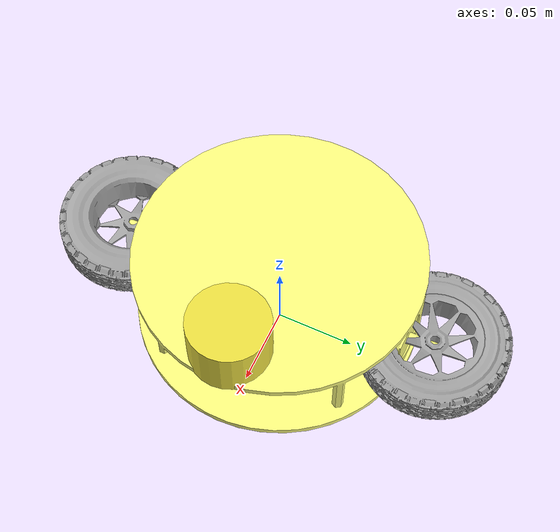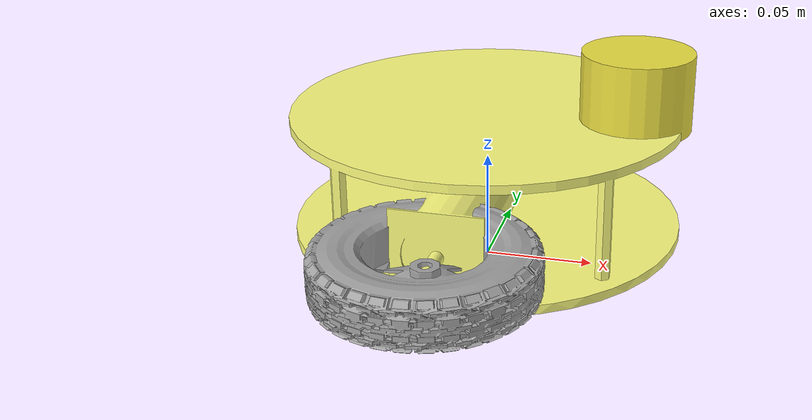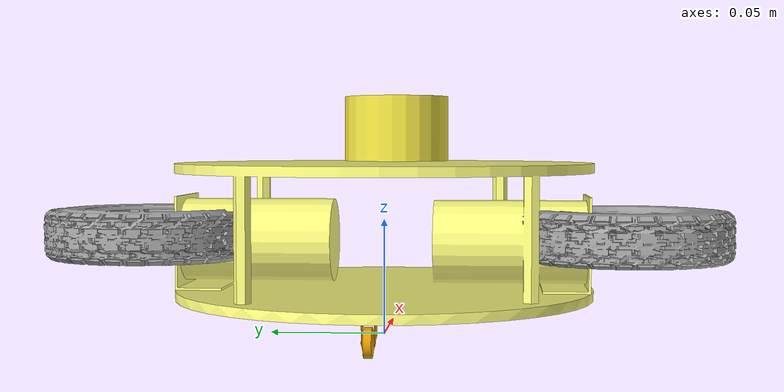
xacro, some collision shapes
<?xml version="1.0" ?>

  <!-- Chasis defined here -->
 <robot name="pocker_bot_vrep" xmlns:xacro="http://www.ros.org/wiki/xacro">
 <xacro:include filename="$(find pocker_bot_vrep_description)/urdf/materials.xacro" />
 <xacro:include filename="$(find pocker_bot_vrep_description)/urdf/wheel_macros.xacro" />
 <xacro:include filename="$(find pocker_bot_vrep_description)/urdf/sensor_macros.xacro" />

<!-- Namespaces of links -->
  <xacro:property name="base_name" value="base_link" />
  <xacro:property name="left_wheel" value="left_wheel_link" />
  <xacro:property name="right_wheel" value="right_wheel_link" />
  <xacro:property name="laser_sensor" value="laser_sensor" />

<!-- Configuration of the base of the robot-->
 <xacro:property name="bot_height" value="0.054024" />
 <xacro:property name="bot_base_radius" value="0.08987" />
<!-- Configuration of the caster -->
 <xacro:property name="caster_radius" value="0.0165" />
 <!-- Configuration of wheel -->
 <xacro:property name="wheel_radius" value="${(bot_height/2)+(caster_radius)}" />
 <xacro:property name="wheel_thickness" value="0.012" />
  <!-- Configuration of sensor -->
 <xacro:property name="sensor_thickness" value="0.035" />
 <xacro:property name="sensor_radius" value="0.025" />

 	<link name="${base_name}">
    <inertial>
      <mass value="5"/>
      <inertia ixx="0.0395416666667" ixy="0" ixz="0" iyy="0.106208333333" iyz="0" izz="0.106208333333"/>
    </inertial>
    <collision name="collision_chassis">
    	<origin rpy="0 0 0" xyz="0 0 ${(bot_height/2)+caster_radius}"/>
      <geometry>
        <cylinder length="${bot_height}" radius="${bot_base_radius}"/>
      </geometry>
    </collision>
    <visual>
      <origin rpy="1.57 0 1.57" xyz="0 0 ${caster_radius}"/>
      <geometry>
        <mesh filename="package://pocker_bot_vrep_description/urdf/meshes/bot_base.stl" scale="0.01 0.01 0.01"/>
      </geometry>
      <material name="light_yellow"/>
    </visual>

    <!-- caster front -->
    <collision name="caster_front_collision">
      <origin rpy=" 0 0 0" xyz="${(3/4)*bot_base_radius} 0 ${caster_radius}"/>
      <geometry>
        <sphere radius="${caster_radius}"/>
      </geometry>
      <surface>
        <friction>
          <ode>
            <mu>0</mu>
            <mu2>0</mu2>
            <slip1>1.0</slip1>
            <slip2>1.0</slip2>
          </ode>
        </friction>
      </surface>
    </collision>
    <visual name="caster_front_visual">
      <origin rpy=" 0 0 1.57" xyz="${(3/4)*bot_base_radius} 0.0057 ${-0.016+caster_radius}"/>
      <geometry>
        <mesh filename="package://pocker_bot_vrep_description/urdf/meshes/castor_wheel.stl" scale="0.00015 0.00015 0.00015"/>
      </geometry>
    </visual>

    <!-- Caster front -->
    <collision name="caster_back_collision">
      <origin rpy=" 0 0 0" xyz="${(-3/4)*bot_base_radius} 0 ${caster_radius}"/>
      <geometry>
        <sphere radius="${caster_radius}"/>
      </geometry>
      <surface>
        <friction>
          <ode>
            <mu>0</mu>
            <mu2>0</mu2>
            <slip1>1.0</slip1>
            <slip2>1.0</slip2>
          </ode>
        </friction>
      </surface>
    </collision>
    <visual name="caster_back_visual">
      <origin rpy=" 0 0 -1.57" xyz="${(-3/4)*bot_base_radius} -0.0057 ${-0.016+caster_radius}"/>
      <geometry>
        <mesh filename="package://pocker_bot_vrep_description/urdf/meshes/castor_wheel.stl" scale="0.00015 0.00015 0.00015"/>
      </geometry>
    </visual>
  </link>

<!-- Left wheel and joint -->
	<xacro:link_wheel name="${left_wheel}" thickness="${wheel_thickness}" radius="${wheel_radius}" origin_xyz="0 0 0" visual_origin_rpy="1.57 -1.57 0" mesh_filename="wheel.dae"/>
	<xacro:joint_wheel name="joint_${left_wheel}" parent="${base_name}" child="${left_wheel}" origin_xyz="0 ${bot_base_radius+0.013} ${(bot_height/2)+caster_radius}" />

<!-- Right wheel and joint -->
  <xacro:link_wheel name="${right_wheel}" thickness="${wheel_thickness}" radius="${wheel_radius}" origin_xyz="0 0 0" mesh_filename="wheel.dae" visual_origin_rpy="1.57 1.57 0"/>
  <xacro:joint_wheel name="joint_${right_wheel}" parent="${base_name}" child="${right_wheel}" origin_xyz="0 ${-bot_base_radius-0.013} ${(bot_height/2)+caster_radius}" />

  <!-- Laser sensor joint -->
  <xacro:sensor name="${laser_sensor}" thickness="${sensor_thickness}" radius="${sensor_radius}" origin_xyz="0 0 ${-sensor_thickness/2}" mesh_filename="hokuyo.dae" visual_origin_rpy=" 0 0 ${-sensor_thickness/2}"/>
  <xacro:sensor_joint name="sensor_joint_${laser_sensor}" parent="${base_name}" child="${laser_sensor}" origin_xyz="${(3/4)*bot_base_radius} 0 ${bot_height+caster_radius+(sensor_thickness)}" />

</robot>

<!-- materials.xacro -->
<robot>

  <material name="black">
    <color rgba="0.0 0.0 0.0 1.0"/>
  </material>

  <material name="blue">
    <color rgba="0.0 0.0 0.8 1.0"/>
  </material>

  <material name="light_yellow">
    <color rgba="1.0 1.0 0.5 1.0"/>
  </material>

  <material name="grey">
    <color rgba="0.2 0.2 0.2 1.0"/>
  </material>

  <material name="orange">
    <color rgba="${255/255} ${108/255} ${10/255} 1.0"/>
  </material>

  <material name="brown">
    <color rgba="${222/255} ${207/255} ${195/255} 1.0"/>
  </material>

  <material name="red">
    <color rgba="0.8 0.0 0.0 1.0"/>
  </material>

  <material name="white">
    <color rgba="1.0 1.0 1.0 1.0"/>
  </material>

</robot>

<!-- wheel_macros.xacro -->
<robot>
<!-- macro for wheels -->
	<macro name="link_wheel" params="name thickness radius origin_xyz visual_origin_rpy mesh_filename">
        <link name="${name}">
            <inertial>
              <mass value="0.2"/>
              <origin rpy="0 1.5707 1.5707" xyz="0 0 0"/>
              <inertia ixx="0.000526666666667" ixy="0" ixz="0" iyy="0.000526666666667" iyz="0" izz="0.001"/>
            </inertial>
            <collision name="${name}_collision">
              <origin rpy="0 1.5707 1.5707" xyz="${origin_xyz}"/>
              <geometry>
                <cylinder length="${thickness}" radius="${radius}"/>
              </geometry>
            </collision>
            <visual name="${name}_visual">
              <origin rpy="${visual_origin_rpy}" xyz="${origin_xyz}"/>
              <geometry>
                <mesh filename="package://pocker_bot_description/urdf/meshes/${mesh_filename}" scale="0.6 1 1"/>
              </geometry>
            </visual>
        </link>
    </macro>

    <!-- macro for joints -->

    <macro name="joint_wheel" params="name parent child origin_xyz">
      <joint name="${name}" type="continuous">
        <origin rpy="0 0 0" xyz="${origin_xyz}"/>
        <child link="${child}"/>
        <parent link="${parent}"/>
        <axis rpy="0 0 0" xyz="0 1 0"/>
        <limit effort="10000" velocity="1000"/>
        <joint_properties damping="1.0" friction="1.0"/>
      </joint>
    </macro>

</robot>

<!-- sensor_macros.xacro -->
<robot>
<!-- macro for wheels -->
	<macro name="sensor" params="name thickness radius origin_xyz visual_origin_rpy mesh_filename">
        <link name="${name}">
            <inertial>
              <mass value="0.2"/>
              <origin rpy="0 0 0" xyz="0 0 0"/>
              <inertia ixx="0.000526666666667" ixy="0" ixz="0" iyy="0.000526666666667" iyz="0" izz="0.001"/>
            </inertial>
            <collision name="${name}_collision">
              <origin rpy="0 0 0" xyz="${origin_xyz}"/>
              <geometry>
                <cylinder length="${thickness}" radius="${radius}"/>
              </geometry>
            </collision>
            <visual name="${name}_visual">
              <origin rpy="${visual_origin_rpy}" xyz="${origin_xyz}"/>
              <geometry>
                <mesh filename="package://pocker_bot_vrep_description/urdf/meshes/${mesh_filename}" scale="0.7 0.7 0.55"/>
              </geometry>
            </visual>
        </link>
    </macro>

    <!-- macro for joints -->

    <macro name="sensor_joint" params="name parent child origin_xyz">
      <joint name="${name}" type="fixed">
        <origin rpy="0 0 0" xyz="${origin_xyz}"/>
        <child link="${child}"/>
        <parent link="${parent}"/>
        <axis rpy="0 0 0" xyz="0 0 1"/>
        <limit effort="10000" velocity="1000"/>
        <joint_properties damping="1.0" friction="1.0"/>
      </joint>
    </macro>

</robot>
